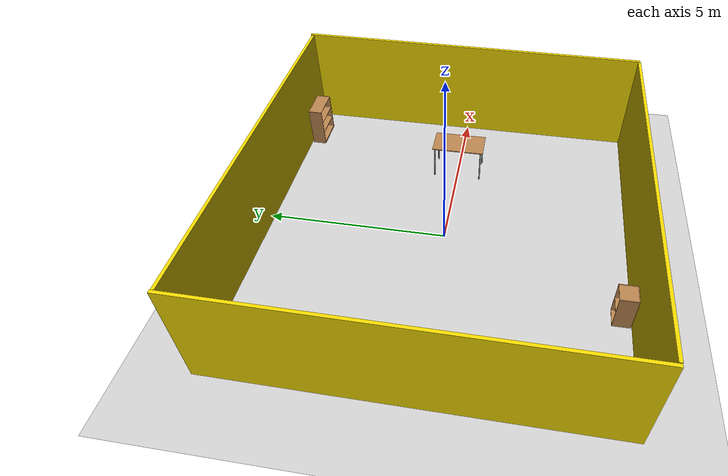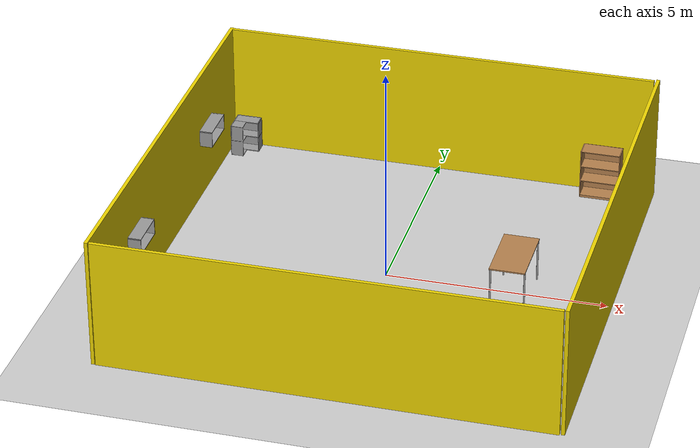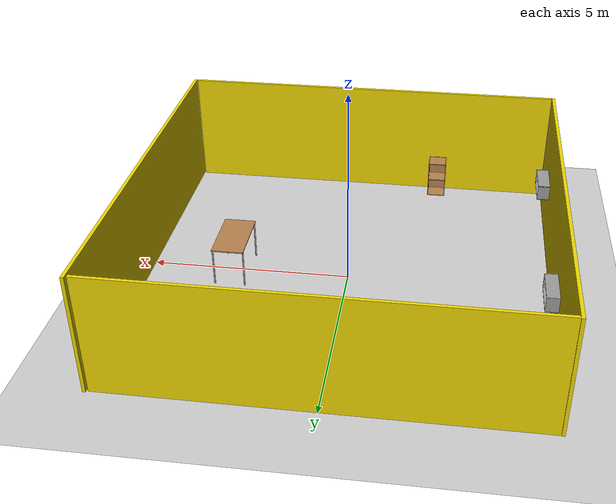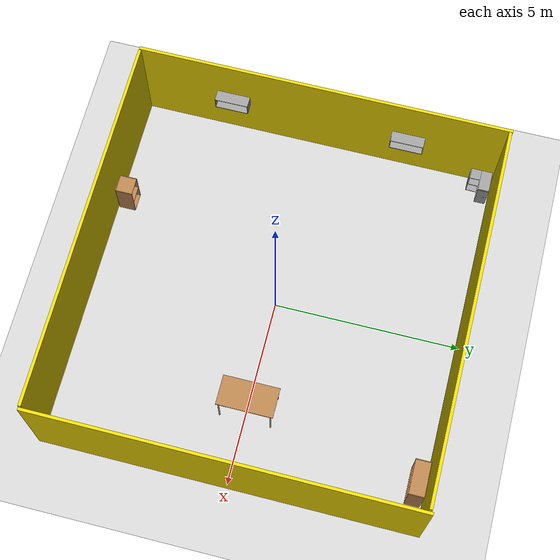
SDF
<sdf version="1.6">
 <world name="default">
  <light name="sun" type="directional">
   <pose>0 0 10 0 -0 0</pose>
   <diffuse>0.8 0.8 0.8 1</diffuse>
   <specular>0.2 0.2 0.2 1</specular>
   <attenuation>
    <range>1000</range>
    <constant>0.9</constant>
    <linear>0.01</linear>
    <quadratic>0.001</quadratic>
   </attenuation>
   <direction>-0.5 0.1 -0.9</direction>
  </light>
  <model name="ground_plane">
   <static>1</static>
   <link name="link">
    <collision name="collision">
     <geometry><plane><normal>0 0 1</normal><size>100 100</size></plane></geometry>
     <surface><friction><ode><mu>100</mu><mu2>50</mu2></ode></friction></surface>
    </collision>
    <visual name="visual">
     <cast_shadows>0</cast_shadows>
     <geometry><plane><normal>0 0 1</normal><size>100 100</size></plane></geometry>
     <material>
      <script><uri>file://media/materials/scripts/gazebo.material</uri><name>Gazebo/Grey</name></script>
     </material>
    </visual>
   </link>
  </model>
  <gravity>0 0 -9.8</gravity>
  <magnetic_field>6e-06 2.3e-05 -4.2e-05</magnetic_field>
  <atmosphere type="adiabatic"/>
  <physics name="default_physics" default="0" type="ode">
   <max_step_size>0.001</max_step_size>
   <real_time_factor>1</real_time_factor>
   <real_time_update_rate>1000</real_time_update_rate>
  </physics>
  <scene><ambient>0.4 0.4 0.4 1</ambient><background>0.7 0.7 0.7 1</background><shadows>1</shadows></scene>
  <audio><device>default</device></audio>
  <spherical_coordinates>
   <surface_model>EARTH_WGS84</surface_model>
   <latitude_deg>0</latitude_deg>
   <longitude_deg>0</longitude_deg>
   <elevation>0</elevation>
   <heading_deg>0</heading_deg>
  </spherical_coordinates>
  <model name="wall">
   <link name="link">
    <inertial>
     <mass>0.232178</mass>
     <inertia><ixx>0.174254</ixx><ixy>0</ixy><ixz>0</ixz><iyy>1.74134</iyy><iyz>0</iyz><izz>1.56732</izz></inertia>
    </inertial>
    <pose>-1.34497 0.547532 1 0 -0 0</pose>
    <visual name="visual">
     <geometry><box><size>10 0.078865 3</size></box></geometry>
     <material>
      <script><name>Gazebo/Grey</name><uri>file://media/materials/scripts/gazebo.material</uri></script>
      <shader type="vertex"><normal_map>__default__</normal_map></shader>
      <ambient>0.929 0.831 0 1</ambient>
      <diffuse>0.929 0.831 0 1</diffuse>
      <specular>0.01 0.01 0.01 1</specular>
      <emissive>0 0 0 1</emissive>
     </material>
    </visual>
    <collision name="collision">
     <geometry><box><size>10 0.078865 3</size></box></geometry>
     <surface>
      <friction>
       <ode><mu>1</mu><mu2>1</mu2><fdir1>0 0 0</fdir1><slip1>0</slip1><slip2>0</slip2></ode>
       <torsional>
        <coefficient>1</coefficient>
        <patch_radius>0</patch_radius>
        <surface_radius>0</surface_radius>
        <use_patch_radius>1</use_patch_radius>
        <ode><slip>0</slip></ode>
       </torsional>
      </friction>
      <bounce><restitution_coefficient>0</restitution_coefficient><threshold>1e+06</threshold></bounce>
      <contact>
       <collide_without_contact>0</collide_without_contact>
       <collide_without_contact_bitmask>1</collide_without_contact_bitmask>
       <collide_bitmask>1</collide_bitmask>
       <ode>
        <soft_cfm>0</soft_cfm>
        <soft_erp>0.2</soft_erp>
        <kp>1e+13</kp>
        <kd>1</kd>
        <max_vel>0.01</max_vel>
        <min_depth>0</min_depth>
       </ode>
       <bullet>
        <split_impulse>1</split_impulse>
        <split_impulse_penetration_threshold>-0.01</split_impulse_penetration_threshold>
        <soft_cfm>0</soft_cfm>
        <soft_erp>0.2</soft_erp>
        <kp>1e+13</kp>
        <kd>1</kd>
       </bullet>
      </contact>
     </surface>
    </collision>
   </link>
   <static>0</static>
   <pose>1.33777 4.39689 0.499993 0 -2e-06 -0.002473</pose>
  </model>
  <model name="wall_clone">
   <link name="link">
    <inertial>
     <mass>0.232178</mass>
     <inertia><ixx>0.174254</ixx><ixy>0</ixy><ixz>0</ixz><iyy>1.74134</iyy><iyz>0</iyz><izz>1.56732</izz></inertia>
    </inertial>
    <pose>-1.34497 0.547532 1 0 -0 0</pose>
    <visual name="visual">
     <geometry><box><size>10 0.078865 3</size></box></geometry>
     <material>
      <script><name>Gazebo/Grey</name><uri>file://media/materials/scripts/gazebo.material</uri></script>
      <shader type="vertex"><normal_map>__default__</normal_map></shader>
      <ambient>0.929 0.831 0 1</ambient>
      <diffuse>0.929 0.831 0 1</diffuse>
      <specular>0.01 0.01 0.01 1</specular>
      <emissive>0 0 0 1</emissive>
     </material>
    </visual>
    <collision name="collision">
     <geometry><box><size>10 0.078865 3</size></box></geometry>
     <surface>
      <friction>
       <ode><mu>1</mu><mu2>1</mu2><fdir1>0 0 0</fdir1><slip1>0</slip1><slip2>0</slip2></ode>
       <torsional>
        <coefficient>1</coefficient>
        <patch_radius>0</patch_radius>
        <surface_radius>0</surface_radius>
        <use_patch_radius>1</use_patch_radius>
        <ode><slip>0</slip></ode>
       </torsional>
      </friction>
      <bounce><restitution_coefficient>0</restitution_coefficient><threshold>1e+06</threshold></bounce>
      <contact>
       <collide_without_contact>0</collide_without_contact>
       <collide_without_contact_bitmask>1</collide_without_contact_bitmask>
       <collide_bitmask>1</collide_bitmask>
       <ode>
        <soft_cfm>0</soft_cfm>
        <soft_erp>0.2</soft_erp>
        <kp>1e+13</kp>
        <kd>1</kd>
        <max_vel>0.01</max_vel>
        <min_depth>0</min_depth>
       </ode>
       <bullet>
        <split_impulse>1</split_impulse>
        <split_impulse_penetration_threshold>-0.01</split_impulse_penetration_threshold>
        <soft_cfm>0</soft_cfm>
        <soft_erp>0.2</soft_erp>
        <kp>1e+13</kp>
        <kd>1</kd>
       </bullet>
      </contact>
     </surface>
    </collision>
   </link>
   <static>0</static>
   <pose>1.32633 -5.51405 0.499988 0 2e-06 -0.001311</pose>
  </model>
  <model name="wall_clone_0">
   <link name="link">
    <inertial>
     <mass>0.232178</mass>
     <inertia><ixx>0.174254</ixx><ixy>0</ixy><ixz>0</ixz><iyy>1.74134</iyy><iyz>0</iyz><izz>1.56732</izz></inertia>
    </inertial>
    <pose>-1.34497 0.547532 1 0 -0 0</pose>
    <visual name="visual">
     <geometry><box><size>10 0.078865 3</size></box></geometry>
     <material>
      <script><name>Gazebo/Grey</name><uri>file://media/materials/scripts/gazebo.material</uri></script>
      <shader type="vertex"><normal_map>__default__</normal_map></shader>
      <ambient>0.929 0.831 0 1</ambient>
      <diffuse>0.929 0.831 0 1</diffuse>
      <specular>0.01 0.01 0.01 1</specular>
      <emissive>0 0 0 1</emissive>
     </material>
    </visual>
    <collision name="collision">
     <geometry><box><size>10 0.078865 3</size></box></geometry>
     <surface>
      <friction>
       <ode><mu>1</mu><mu2>1</mu2><fdir1>0 0 0</fdir1><slip1>0</slip1><slip2>0</slip2></ode>
       <torsional>
        <coefficient>1</coefficient>
        <patch_radius>0</patch_radius>
        <surface_radius>0</surface_radius>
        <use_patch_radius>1</use_patch_radius>
        <ode><slip>0</slip></ode>
       </torsional>
      </friction>
      <bounce><restitution_coefficient>0</restitution_coefficient><threshold>1e+06</threshold></bounce>
      <contact>
       <collide_without_contact>0</collide_without_contact>
       <collide_without_contact_bitmask>1</collide_without_contact_bitmask>
       <collide_bitmask>1</collide_bitmask>
       <ode>
        <soft_cfm>0</soft_cfm>
        <soft_erp>0.2</soft_erp>
        <kp>1e+13</kp>
        <kd>1</kd>
        <max_vel>0.01</max_vel>
        <min_depth>0</min_depth>
       </ode>
       <bullet>
        <split_impulse>1</split_impulse>
        <split_impulse_penetration_threshold>-0.01</split_impulse_penetration_threshold>
        <soft_cfm>0</soft_cfm>
        <soft_erp>0.2</soft_erp>
        <kp>1e+13</kp>
        <kd>1</kd>
       </bullet>
      </contact>
     </surface>
    </collision>
   </link>
   <static>0</static>
   <pose>-4.51089 1.35715 0.499988 0 2e-06 1.56802</pose>
  </model>
  <model name="wall_clone_1">
   <link name="link">
    <inertial>
     <mass>0.232178</mass>
     <inertia><ixx>0.174254</ixx><ixy>0</ixy><ixz>0</ixz><iyy>1.74134</iyy><iyz>0</iyz><izz>1.56732</izz></inertia>
    </inertial>
    <pose>-1.34497 0.547532 1 0 -0 0</pose>
    <visual name="visual">
     <geometry><box><size>10 0.078865 3</size></box></geometry>
     <material>
      <script><name>Gazebo/Grey</name><uri>file://media/materials/scripts/gazebo.material</uri></script>
      <shader type="vertex"><normal_map>__default__</normal_map></shader>
      <ambient>0.929 0.831 0 1</ambient>
      <diffuse>0.929 0.831 0 1</diffuse>
      <specular>0.01 0.01 0.01 1</specular>
      <emissive>0 0 0 1</emissive>
     </material>
    </visual>
    <collision name="collision">
     <geometry><box><size>10 0.078865 3</size></box></geometry>
     <surface>
      <friction>
       <ode><mu>1</mu><mu2>1</mu2><fdir1>0 0 0</fdir1><slip1>0</slip1><slip2>0</slip2></ode>
       <torsional>
        <coefficient>1</coefficient>
        <patch_radius>0</patch_radius>
        <surface_radius>0</surface_radius>
        <use_patch_radius>1</use_patch_radius>
        <ode><slip>0</slip></ode>
       </torsional>
      </friction>
      <bounce><restitution_coefficient>0</restitution_coefficient><threshold>1e+06</threshold></bounce>
      <contact>
       <collide_without_contact>0</collide_without_contact>
       <collide_without_contact_bitmask>1</collide_without_contact_bitmask>
       <collide_bitmask>1</collide_bitmask>
       <ode>
        <soft_cfm>0</soft_cfm>
        <soft_erp>0.2</soft_erp>
        <kp>1e+13</kp>
        <kd>1</kd>
        <max_vel>0.01</max_vel>
        <min_depth>0</min_depth>
       </ode>
       <bullet>
        <split_impulse>1</split_impulse>
        <split_impulse_penetration_threshold>-0.01</split_impulse_penetration_threshold>
        <soft_cfm>0</soft_cfm>
        <soft_erp>0.2</soft_erp>
        <kp>1e+13</kp>
        <kd>1</kd>
       </bullet>
      </contact>
     </surface>
    </collision>
   </link>
   <static>0</static>
   <pose>5.61341 1.35715 0.499988 0 2e-06 1.56802</pose>
  </model>
  <model name="bookshelf">
   <static>1</static>
   <link name="link">
    <inertial><mass>1</mass></inertial>
    <collision name="back">
     <pose>0 0.005 0.6 0 -0 0</pose>
     <geometry><box><size>0.9 0.01 1.2</size></box></geometry>
    </collision>
    <visual name="visual1">
     <pose>0 0.005 0.6 0 -0 0</pose>
     <geometry><box><size>0.9 0.01 1.2</size></box></geometry>
     <material>
      <script><uri>file://media/materials/scripts/gazebo.material</uri><name>Gazebo/Wood</name></script>
     </material>
    </visual>
    <collision name="left_side">
     <pose>0.45 -0.195 0.6 0 -0 0</pose>
     <geometry><box><size>0.02 0.4 1.2</size></box></geometry>
    </collision>
    <visual name="visual2">
     <pose>0.45 -0.195 0.6 0 -0 0</pose>
     <geometry><box><size>0.02 0.4 1.2</size></box></geometry>
     <material>
      <script><uri>file://media/materials/scripts/gazebo.material</uri><name>Gazebo/Wood</name></script>
     </material>
    </visual>
    <collision name="right_side">
     <pose>-0.45 -0.195 0.6 0 -0 0</pose>
     <geometry><box><size>0.02 0.4 1.2</size></box></geometry>
    </collision>
    <visual name="visual3">
     <pose>-0.45 -0.195 0.6 0 -0 0</pose>
     <geometry><box><size>0.02 0.4 1.2</size></box></geometry>
     <material>
      <script><uri>file://media/materials/scripts/gazebo.material</uri><name>Gazebo/Wood</name></script>
     </material>
    </visual>
    <collision name="bottom">
     <pose>0 -0.195 0.03 0 -0 0</pose>
     <geometry><box><size>0.88 0.4 0.06</size></box></geometry>
    </collision>
    <visual name="visual4">
     <pose>0 -0.195 0.03 0 -0 0</pose>
     <geometry><box><size>0.88 0.4 0.06</size></box></geometry>
     <material>
      <script><uri>file://media/materials/scripts/gazebo.material</uri><name>Gazebo/Wood</name></script>
     </material>
    </visual>
    <collision name="top">
     <pose>0 -0.195 1.19 0 -0 0</pose>
     <geometry><box><size>0.88 0.4 0.02</size></box></geometry>
    </collision>
    <visual name="visual5">
     <pose>0 -0.195 1.19 0 -0 0</pose>
     <geometry><box><size>0.88 0.4 0.02</size></box></geometry>
     <material>
      <script><uri>file://media/materials/scripts/gazebo.material</uri><name>Gazebo/Wood</name></script>
     </material>
    </visual>
    <collision name="low_shelf">
     <pose>0 -0.195 0.43 0 -0 0</pose>
     <geometry><box><size>0.88 0.4 0.02</size></box></geometry>
    </collision>
    <visual name="visual6">
     <pose>0 -0.195 0.43 0 -0 0</pose>
     <geometry><box><size>0.88 0.4 0.02</size></box></geometry>
     <material>
      <script><uri>file://media/materials/scripts/gazebo.material</uri><name>Gazebo/Wood</name></script>
     </material>
    </visual>
    <collision name="high_shelf">
     <pose>0 -0.195 0.8 0 -0 0</pose>
     <geometry><box><size>0.88 0.4 0.02</size></box></geometry>
    </collision>
    <visual name="visual7">
     <pose>0 -0.195 0.8 0 -0 0</pose>
     <geometry><box><size>0.88 0.4 0.02</size></box></geometry>
     <material>
      <script><uri>file://media/materials/scripts/gazebo.material</uri><name>Gazebo/Wood</name></script>
     </material>
    </visual>
   </link>
   <pose>3.91792 4.84906 0 0 -0 0</pose>
  </model>
  <model name="cabinet">
   <static>1</static>
   <link name="cabinet_bottom_plate">
    <inertial>
     <pose>0 0 -1 0 -0 0</pose>
     <inertia><ixx>2.05</ixx><ixy>0</ixy><ixz>0</ixz><iyy>2.05</iyy><iyz>0</iyz><izz>2.05</izz></inertia>
     <mass>25</mass>
    </inertial>
    <collision name="cabinet_bottom_plate_geom">
     <pose>0 0 0.01 0 -0 0</pose>
     <geometry><box><size>0.45 0.45 0.02</size></box></geometry>
    </collision>
    <visual name="cabinet_bottom_plate_geom_visual">
     <pose>0 0 0.01 0 -0 0</pose>
     <geometry><box><size>0.45 0.45 0.02</size></box></geometry>
     <material>
      <script><uri>file://media/materials/scripts/gazebo.material</uri><name>Gazebo/Wood</name></script>
     </material>
    </visual>
    <collision name="cabinet_bottom_plate_geom_cabinet_back_plate">
     <pose>0.235 0 0.51 0 -0 0</pose>
     <geometry><box><size>0.02 0.45 1.02</size></box></geometry>
    </collision>
    <visual name="cabinet_bottom_plate_geom_cabinet_back_plate_visual">
     <pose>0.235 0 0.51 0 -0 0</pose>
     <geometry><box><size>0.02 0.45 1.02</size></box></geometry>
     <material>
      <script><uri>file://media/materials/scripts/gazebo.material</uri><name>Gazebo/Wood</name></script>
     </material>
    </visual>
    <collision name="cabinet_bottom_plate_geom_cabinet_left_plate">
     <pose>0 0.235 0.51 0 -0 0</pose>
     <geometry><box><size>0.45 0.02 1.02</size></box></geometry>
    </collision>
    <visual name="cabinet_bottom_plate_geom_cabinet_left_plate_visual">
     <pose>0 0.235 0.51 0 -0 0</pose>
     <geometry><box><size>0.45 0.02 1.02</size></box></geometry>
     <material>
      <script><uri>file://media/materials/scripts/gazebo.material</uri><name>Gazebo/Wood</name></script>
     </material>
    </visual>
    <collision name="cabinet_bottom_plate_geom_cabinet_middle_plate">
     <pose>0 0 0.51 0 -0 0</pose>
     <geometry><box><size>0.45 0.45 0.02</size></box></geometry>
    </collision>
    <visual name="cabinet_bottom_plate_geom_cabinet_middle_plate_visual">
     <pose>0 0 0.51 0 -0 0</pose>
     <geometry><box><size>0.45 0.45 0.02</size></box></geometry>
     <material>
      <script><uri>file://media/materials/scripts/gazebo.material</uri><name>Gazebo/Wood</name></script>
     </material>
    </visual>
    <collision name="cabinet_bottom_plate_geom_cabinet_right_plate">
     <pose>0 -0.235 0.51 0 -0 0</pose>
     <geometry><box><size>0.45 0.02 1.02</size></box></geometry>
    </collision>
    <visual name="cabinet_bottom_plate_geom_cabinet_right_plate_visual">
     <pose>0 -0.235 0.51 0 -0 0</pose>
     <geometry><box><size>0.45 0.02 1.02</size></box></geometry>
     <material>
      <script><uri>file://media/materials/scripts/gazebo.material</uri><name>Gazebo/Wood</name></script>
     </material>
    </visual>
    <collision name="cabinet_bottom_plate_geom_cabinet_top_plate">
     <pose>0 0 1.01 0 -0 0</pose>
     <geometry><box><size>0.45 0.45 0.02</size></box></geometry>
    </collision>
    <visual name="cabinet_bottom_plate_geom_cabinet_top_plate_visual">
     <pose>0 0 1.01 0 -0 0</pose>
     <geometry><box><size>0.45 0.45 0.02</size></box></geometry>
     <material>
      <script><uri>file://media/materials/scripts/gazebo.material</uri><name>Gazebo/Wood</name></script>
     </material>
    </visual>
   </link>
   <pose>-2.01375 -4.66643 0 0 0 -1.57</pose>
  </model>
  <model name="table">
   <static>1</static>
   <link name="link">
    <collision name="surface">
     <pose>0 0 1 0 -0 0</pose>
     <geometry><box><size>1.5 0.8 0.03</size></box></geometry>
     <surface><friction><ode><mu>0.6</mu><mu2>0.6</mu2></ode></friction></surface>
    </collision>
    <visual name="visual1">
     <pose>0 0 1 0 -0 0</pose>
     <geometry><box><size>1.5 0.8 0.03</size></box></geometry>
     <material>
      <script><uri>file://media/materials/scripts/gazebo.material</uri><name>Gazebo/Wood</name></script>
     </material>
    </visual>
    <collision name="front_left_leg">
     <pose>0.68 0.38 0.5 0 -0 0</pose>
     <geometry><cylinder><radius>0.02</radius><length>1</length></cylinder></geometry>
    </collision>
    <visual name="front_left_leg">
     <pose>0.68 0.38 0.5 0 -0 0</pose>
     <geometry><cylinder><radius>0.02</radius><length>1</length></cylinder></geometry>
     <material>
      <script><uri>file://media/materials/scripts/gazebo.material</uri><name>Gazebo/Grey</name></script>
     </material>
    </visual>
    <collision name="front_right_leg">
     <pose>0.68 -0.38 0.5 0 -0 0</pose>
     <geometry><cylinder><radius>0.02</radius><length>1</length></cylinder></geometry>
    </collision>
    <visual name="front_right_leg">
     <pose>0.68 -0.38 0.5 0 -0 0</pose>
     <geometry><cylinder><radius>0.02</radius><length>1</length></cylinder></geometry>
     <material>
      <script><uri>file://media/materials/scripts/gazebo.material</uri><name>Gazebo/Grey</name></script>
     </material>
    </visual>
    <collision name="back_right_leg">
     <pose>-0.68 -0.38 0.5 0 -0 0</pose>
     <geometry><cylinder><radius>0.02</radius><length>1</length></cylinder></geometry>
    </collision>
    <visual name="back_right_leg">
     <pose>-0.68 -0.38 0.5 0 -0 0</pose>
     <geometry><cylinder><radius>0.02</radius><length>1</length></cylinder></geometry>
     <material>
      <script><uri>file://media/materials/scripts/gazebo.material</uri><name>Gazebo/Grey</name></script>
     </material>
    </visual>
    <collision name="back_left_leg">
     <pose>-0.68 0.38 0.5 0 -0 0</pose>
     <geometry><cylinder><radius>0.02</radius><length>1</length></cylinder></geometry>
    </collision>
    <visual name="back_left_leg">
     <pose>-0.68 0.38 0.5 0 -0 0</pose>
     <geometry><cylinder><radius>0.02</radius><length>1</length></cylinder></geometry>
     <material>
      <script><uri>file://media/materials/scripts/gazebo.material</uri><name>Gazebo/Grey</name></script>
     </material>
    </visual>
   </link>
   <pose>2.89498 0.013984 0 0 -0 1.57</pose>
  </model>
  <model name="Wall_Cabinet_36x15W">
   <link name="Wall_0">
    <pose>0 0 0.01 0 -0 0</pose>
    <inertial>
     <mass>1.9796</mass>
     <inertia><ixx>0.0145</ixx><iyy>0.1511</iyy><izz>0.1367</izz><ixy>0</ixy><ixz>0</ixz><iyz>0</iyz></inertia>
    </inertial>
    <collision name="Wall_0_Collision"><geometry><box><size>0.91 0.296 0.02</size></box></geometry></collision>
    <visual name="Wall_0_Visual">
     <geometry><box><size>0.91 0.296 0.02</size></box></geometry>
     <material>
      <script><uri>file://media/materials/scripts/gazebo.material</uri><name>Gazebo/Grey</name></script>
      <ambient>1 1 1 1</ambient>
     </material>
    </visual>
   </link>
   <joint name="0_2" type="fixed">
    <pose>-0.455 0 0 0 -0 0</pose>
    <parent>Wall_2</parent>
    <child>Wall_0</child>
    <axis>
     <xyz>0 0 1</xyz>
     <use_parent_model_frame>0</use_parent_model_frame>
     <limit><lower>-1e+16</lower><upper>1e+16</upper></limit>
    </axis>
   </joint>
   <joint name="0_4" type="fixed">
    <pose>0.455 0 0 0 -0 0</pose>
    <parent>Wall_4</parent>
    <child>Wall_0</child>
    <axis>
     <xyz>0 0 1</xyz>
     <use_parent_model_frame>0</use_parent_model_frame>
     <limit><lower>-1e+16</lower><upper>1e+16</upper></limit>
    </axis>
   </joint>
   <joint name="0_8" type="fixed">
    <pose>0 -0.148 0 0 -0 0</pose>
    <parent>Wall_8</parent>
    <child>Wall_0</child>
    <axis>
     <xyz>0 0 1</xyz>
     <use_parent_model_frame>0</use_parent_model_frame>
     <limit><lower>-1e+16</lower><upper>1e+16</upper></limit>
    </axis>
   </joint>
   <link name="Wall_2">
    <pose>-0.445 0 0.192 0 -0 0</pose>
    <inertial>
     <mass>0.8353</mass>
     <inertia><ixx>0.0061</ixx><iyy>0.0164</iyy><izz>0.0103</izz><ixy>0</ixy><ixz>0</ixz><iyz>0</iyz></inertia>
    </inertial>
    <collision name="Wall_2_Collision"><geometry><box><size>0.02 0.296 0.384</size></box></geometry></collision>
    <visual name="Wall_2_Visual">
     <geometry><box><size>0.02 0.296 0.384</size></box></geometry>
     <material>
      <script><uri>file://media/materials/scripts/gazebo.material</uri><name>Gazebo/Grey</name></script>
      <ambient>1 1 1 1</ambient>
     </material>
    </visual>
   </link>
   <link name="Wall_4">
    <pose>0.445 0 0.192 0 -0 0</pose>
    <inertial>
     <mass>0.8353</mass>
     <inertia><ixx>0.0061</ixx><iyy>0.0164</iyy><izz>0.0103</izz><ixy>0</ixy><ixz>0</ixz><iyz>0</iyz></inertia>
    </inertial>
    <collision name="Wall_4_Collision"><geometry><box><size>0.02 0.296 0.384</size></box></geometry></collision>
    <visual name="Wall_4_Visual">
     <geometry><box><size>0.02 0.296 0.384</size></box></geometry>
     <material>
      <script><uri>file://media/materials/scripts/gazebo.material</uri><name>Gazebo/Grey</name></script>
      <ambient>1 1 1 1</ambient>
     </material>
    </visual>
   </link>
   <link name="Wall_6">
    <pose>0 0 0.374 0 -0 0</pose>
    <inertial>
     <mass>1.9796</mass>
     <inertia><ixx>0.0145</ixx><iyy>0.1511</iyy><izz>0.1367</izz><ixy>0</ixy><ixz>0</ixz><iyz>0</iyz></inertia>
    </inertial>
    <collision name="Wall_6_Collision"><geometry><box><size>0.91 0.296 0.02</size></box></geometry></collision>
    <visual name="Wall_6_Visual">
     <geometry><box><size>0.91 0.296 0.02</size></box></geometry>
     <material>
      <script><uri>file://media/materials/scripts/gazebo.material</uri><name>Gazebo/Grey</name></script>
      <ambient>1 1 1 1</ambient>
     </material>
    </visual>
   </link>
   <joint name="6_2" type="fixed">
    <pose>-0.455 0 0 0 -0 0</pose>
    <parent>Wall_2</parent>
    <child>Wall_6</child>
    <axis>
     <xyz>0 0 1</xyz>
     <use_parent_model_frame>0</use_parent_model_frame>
     <limit><lower>-1e+16</lower><upper>1e+16</upper></limit>
    </axis>
   </joint>
   <joint name="6_4" type="fixed">
    <pose>0.455 0 0 0 -0 0</pose>
    <parent>Wall_4</parent>
    <child>Wall_6</child>
    <axis>
     <xyz>0 0 1</xyz>
     <use_parent_model_frame>0</use_parent_model_frame>
     <limit><lower>-1e+16</lower><upper>1e+16</upper></limit>
    </axis>
   </joint>
   <joint name="6_8" type="fixed">
    <pose>0 -0.148 0 0 -0 0</pose>
    <parent>Wall_8</parent>
    <child>Wall_6</child>
    <axis>
     <xyz>0 0 1</xyz>
     <use_parent_model_frame>0</use_parent_model_frame>
     <limit><lower>-1e+16</lower><upper>1e+16</upper></limit>
    </axis>
   </joint>
   <link name="Wall_8">
    <pose>0 -0.138 0.19 0 -0 0</pose>
    <inertial>
     <mass>2.5302</mass>
     <inertia><ixx>0.0305</ixx><iyy>0.1732</iyy><izz>0.2035</izz><ixy>0</ixy><ixz>0</ixz><iyz>0</iyz></inertia>
    </inertial>
    <collision name="Wall_8_Collision"><geometry><box><size>0.906 0.02 0.38</size></box></geometry></collision>
    <visual name="Wall_8_Visual">
     <geometry><box><size>0.906 0.02 0.38</size></box></geometry>
     <material>
      <script><uri>file://media/materials/scripts/gazebo.material</uri><name>Gazebo/Grey</name></script>
      <ambient>1 1 1 1</ambient>
     </material>
    </visual>
   </link>
   <joint name="8_2" type="fixed">
    <pose>-0.453 0 0 0 -0 0</pose>
    <parent>Wall_2</parent>
    <child>Wall_8</child>
    <axis>
     <xyz>0 1 0</xyz>
     <use_parent_model_frame>0</use_parent_model_frame>
     <limit><lower>-1e+16</lower><upper>1e+16</upper></limit>
    </axis>
   </joint>
   <joint name="8_4" type="fixed">
    <pose>0.453 0 0 0 -0 0</pose>
    <parent>Wall_4</parent>
    <child>Wall_8</child>
    <axis>
     <xyz>0 1 0</xyz>
     <use_parent_model_frame>0</use_parent_model_frame>
     <limit><lower>-1e+16</lower><upper>1e+16</upper></limit>
    </axis>
   </joint>
   <static>1</static>
   <pose>-4.75643 2.42383 1.5 0 0 -1.57</pose>
  </model>
  <model name="Wall_Cabinet_36x15W_clone">
   <link name="Wall_0">
    <pose>0 0 0.01 0 -0 0</pose>
    <inertial>
     <mass>1.9796</mass>
     <inertia><ixx>0.0145</ixx><iyy>0.1511</iyy><izz>0.1367</izz><ixy>0</ixy><ixz>0</ixz><iyz>0</iyz></inertia>
    </inertial>
    <collision name="Wall_0_Collision"><geometry><box><size>0.91 0.296 0.02</size></box></geometry></collision>
    <visual name="Wall_0_Visual">
     <geometry><box><size>0.91 0.296 0.02</size></box></geometry>
     <material>
      <script><uri>file://media/materials/scripts/gazebo.material</uri><name>Gazebo/Grey</name></script>
      <ambient>1 1 1 1</ambient>
     </material>
    </visual>
   </link>
   <joint name="0_2" type="fixed">
    <pose>-0.455 0 0 0 -0 0</pose>
    <parent>Wall_2</parent>
    <child>Wall_0</child>
    <axis>
     <xyz>0 0 1</xyz>
     <use_parent_model_frame>0</use_parent_model_frame>
     <limit><lower>-1e+16</lower><upper>1e+16</upper></limit>
    </axis>
   </joint>
   <joint name="0_4" type="fixed">
    <pose>0.455 0 0 0 -0 0</pose>
    <parent>Wall_4</parent>
    <child>Wall_0</child>
    <axis>
     <xyz>0 0 1</xyz>
     <use_parent_model_frame>0</use_parent_model_frame>
     <limit><lower>-1e+16</lower><upper>1e+16</upper></limit>
    </axis>
   </joint>
   <joint name="0_8" type="fixed">
    <pose>0 -0.148 0 0 -0 0</pose>
    <parent>Wall_8</parent>
    <child>Wall_0</child>
    <axis>
     <xyz>0 0 1</xyz>
     <use_parent_model_frame>0</use_parent_model_frame>
     <limit><lower>-1e+16</lower><upper>1e+16</upper></limit>
    </axis>
   </joint>
   <link name="Wall_2">
    <pose>-0.445 0 0.192 0 -0 0</pose>
    <inertial>
     <mass>0.8353</mass>
     <inertia><ixx>0.0061</ixx><iyy>0.0164</iyy><izz>0.0103</izz><ixy>0</ixy><ixz>0</ixz><iyz>0</iyz></inertia>
    </inertial>
    <collision name="Wall_2_Collision"><geometry><box><size>0.02 0.296 0.384</size></box></geometry></collision>
    <visual name="Wall_2_Visual">
     <geometry><box><size>0.02 0.296 0.384</size></box></geometry>
     <material>
      <script><uri>file://media/materials/scripts/gazebo.material</uri><name>Gazebo/Grey</name></script>
      <ambient>1 1 1 1</ambient>
     </material>
    </visual>
   </link>
   <link name="Wall_4">
    <pose>0.445 0 0.192 0 -0 0</pose>
    <inertial>
     <mass>0.8353</mass>
     <inertia><ixx>0.0061</ixx><iyy>0.0164</iyy><izz>0.0103</izz><ixy>0</ixy><ixz>0</ixz><iyz>0</iyz></inertia>
    </inertial>
    <collision name="Wall_4_Collision"><geometry><box><size>0.02 0.296 0.384</size></box></geometry></collision>
    <visual name="Wall_4_Visual">
     <geometry><box><size>0.02 0.296 0.384</size></box></geometry>
     <material>
      <script><uri>file://media/materials/scripts/gazebo.material</uri><name>Gazebo/Grey</name></script>
      <ambient>1 1 1 1</ambient>
     </material>
    </visual>
   </link>
   <link name="Wall_6">
    <pose>0 0 0.374 0 -0 0</pose>
    <inertial>
     <mass>1.9796</mass>
     <inertia><ixx>0.0145</ixx><iyy>0.1511</iyy><izz>0.1367</izz><ixy>0</ixy><ixz>0</ixz><iyz>0</iyz></inertia>
    </inertial>
    <collision name="Wall_6_Collision"><geometry><box><size>0.91 0.296 0.02</size></box></geometry></collision>
    <visual name="Wall_6_Visual">
     <geometry><box><size>0.91 0.296 0.02</size></box></geometry>
     <material>
      <script><uri>file://media/materials/scripts/gazebo.material</uri><name>Gazebo/Grey</name></script>
      <ambient>1 1 1 1</ambient>
     </material>
    </visual>
   </link>
   <joint name="6_2" type="fixed">
    <pose>-0.455 0 0 0 -0 0</pose>
    <parent>Wall_2</parent>
    <child>Wall_6</child>
    <axis>
     <xyz>0 0 1</xyz>
     <use_parent_model_frame>0</use_parent_model_frame>
     <limit><lower>-1e+16</lower><upper>1e+16</upper></limit>
    </axis>
   </joint>
   <joint name="6_4" type="fixed">
    <pose>0.455 0 0 0 -0 0</pose>
    <parent>Wall_4</parent>
    <child>Wall_6</child>
    <axis>
     <xyz>0 0 1</xyz>
     <use_parent_model_frame>0</use_parent_model_frame>
     <limit><lower>-1e+16</lower><upper>1e+16</upper></limit>
    </axis>
   </joint>
   <joint name="6_8" type="fixed">
    <pose>0 -0.148 0 0 -0 0</pose>
    <parent>Wall_8</parent>
    <child>Wall_6</child>
    <axis>
     <xyz>0 0 1</xyz>
     <use_parent_model_frame>0</use_parent_model_frame>
     <limit><lower>-1e+16</lower><upper>1e+16</upper></limit>
    </axis>
   </joint>
   <link name="Wall_8">
    <pose>0 -0.138 0.19 0 -0 0</pose>
    <inertial>
     <mass>2.5302</mass>
     <inertia><ixx>0.0305</ixx><iyy>0.1732</iyy><izz>0.2035</izz><ixy>0</ixy><ixz>0</ixz><iyz>0</iyz></inertia>
    </inertial>
    <collision name="Wall_8_Collision"><geometry><box><size>0.906 0.02 0.38</size></box></geometry></collision>
    <visual name="Wall_8_Visual">
     <geometry><box><size>0.906 0.02 0.38</size></box></geometry>
     <material>
      <script><uri>file://media/materials/scripts/gazebo.material</uri><name>Gazebo/Grey</name></script>
      <ambient>1 1 1 1</ambient>
     </material>
    </visual>
   </link>
   <joint name="8_2" type="fixed">
    <pose>-0.453 0 0 0 -0 0</pose>
    <parent>Wall_2</parent>
    <child>Wall_8</child>
    <axis>
     <xyz>0 1 0</xyz>
     <use_parent_model_frame>0</use_parent_model_frame>
     <limit><lower>-1e+16</lower><upper>1e+16</upper></limit>
    </axis>
   </joint>
   <joint name="8_4" type="fixed">
    <pose>0.453 0 0 0 -0 0</pose>
    <parent>Wall_4</parent>
    <child>Wall_8</child>
    <axis>
     <xyz>0 1 0</xyz>
     <use_parent_model_frame>0</use_parent_model_frame>
     <limit><lower>-1e+16</lower><upper>1e+16</upper></limit>
    </axis>
   </joint>
   <static>1</static>
   <pose>-4.80434 -2.41122 1.5 0 0 -1.57</pose>
  </model>
  <model name="Wall_Cabinet_Coin_24x30W">
   <link name="Wall_10">
    <pose>0.286 -0.148 0.384 0 -0 0</pose>
    <inertial>
     <mass>2.1259</mass>
     <inertia><ixx>0.0158</ixx><iyy>0.1202</iyy><izz>0.1046</izz><ixy>0</ixy><ixz>0</ixz><iyz>0</iyz></inertia>
    </inertial>
    <collision name="Wall_10_Collision"><geometry><box><size>0.02 0.296 0.768</size></box></geometry></collision>
    <visual name="Wall_10_Visual">
     <geometry><box><size>0.02 0.296 0.768</size></box></geometry>
     <material>
      <script><uri>file://media/materials/scripts/gazebo.material</uri><name>Gazebo/Grey</name></script>
      <ambient>1 1 1 1</ambient>
     </material>
    </visual>
   </link>
   <joint name="10_16" type="fixed">
    <pose>0 0 -0.374 0 -0 0</pose>
    <parent>Wall_16</parent>
    <child>Wall_10</child>
    <axis>
     <xyz>1 0 0</xyz>
     <use_parent_model_frame>0</use_parent_model_frame>
     <limit><lower>-1e+16</lower><upper>1e+16</upper></limit>
    </axis>
   </joint>
   <joint name="10_14" type="fixed">
    <parent>Wall_14</parent>
    <child>Wall_10</child>
    <axis>
     <xyz>1 0 0</xyz>
     <use_parent_model_frame>0</use_parent_model_frame>
     <limit><lower>-1e+16</lower><upper>1e+16</upper></limit>
    </axis>
   </joint>
   <joint name="10_12" type="fixed">
    <pose>0 0 0.374 0 -0 0</pose>
    <parent>Wall_12</parent>
    <child>Wall_10</child>
    <axis>
     <xyz>1 0 0</xyz>
     <use_parent_model_frame>0</use_parent_model_frame>
     <limit><lower>-1e+16</lower><upper>1e+16</upper></limit>
    </axis>
   </joint>
   <joint name="10_29" type="fixed">
    <pose>0 -0.148 0 0 -0 0</pose>
    <parent>Wall_29</parent>
    <child>Wall_10</child>
    <axis>
     <xyz>1 0 0</xyz>
     <use_parent_model_frame>0</use_parent_model_frame>
     <limit><lower>-1e+16</lower><upper>1e+16</upper></limit>
    </axis>
   </joint>
   <link name="Wall_12">
    <pose>0.148 -0.148 0.758 0 -0 0</pose>
    <inertial>
     <mass>0.8802</mass>
     <inertia><ixx>0.0065</ixx><iyy>0.0139</iyy><izz>0.0074</izz><ixy>0</ixy><ixz>0</ixz><iyz>0</iyz></inertia>
    </inertial>
    <collision name="Wall_12_Collision"><geometry><box><size>0.296 0.296 0.02</size></box></geometry></collision>
    <visual name="Wall_12_Visual">
     <geometry><box><size>0.296 0.296 0.02</size></box></geometry>
     <material>
      <script><uri>file://media/materials/scripts/gazebo.material</uri><name>Gazebo/Grey</name></script>
      <ambient>1 1 1 1</ambient>
     </material>
    </visual>
   </link>
   <joint name="12_29" type="fixed">
    <pose>0 -0.148 0 0 -0 0</pose>
    <parent>Wall_29</parent>
    <child>Wall_12</child>
    <axis>
     <xyz>0 0 1</xyz>
     <use_parent_model_frame>0</use_parent_model_frame>
     <limit><lower>-1e+16</lower><upper>1e+16</upper></limit>
    </axis>
   </joint>
   <link name="Wall_14">
    <pose>0.148 -0.148 0.384 0 -0 0</pose>
    <inertial>
     <mass>0.8802</mass>
     <inertia><ixx>0.0065</ixx><iyy>0.0139</iyy><izz>0.0074</izz><ixy>0</ixy><ixz>0</ixz><iyz>0</iyz></inertia>
    </inertial>
    <collision name="Wall_14_Collision"><geometry><box><size>0.296 0.296 0.02</size></box></geometry></collision>
    <visual name="Wall_14_Visual">
     <geometry><box><size>0.296 0.296 0.02</size></box></geometry>
     <material>
      <script><uri>file://media/materials/scripts/gazebo.material</uri><name>Gazebo/Grey</name></script>
      <ambient>1 1 1 1</ambient>
     </material>
    </visual>
   </link>
   <joint name="14_29" type="fixed">
    <pose>0 -0.148 0 0 -0 0</pose>
    <parent>Wall_29</parent>
    <child>Wall_14</child>
    <axis>
     <xyz>0 1 0</xyz>
     <use_parent_model_frame>0</use_parent_model_frame>
     <limit><lower>-1e+16</lower><upper>1e+16</upper></limit>
    </axis>
   </joint>
   <link name="Wall_16">
    <pose>0.148 -0.148 0.01 0 -0 0</pose>
    <inertial>
     <mass>0.8802</mass>
     <inertia><ixx>0.0065</ixx><iyy>0.0139</iyy><izz>0.0074</izz><ixy>0</ixy><ixz>0</ixz><iyz>0</iyz></inertia>
    </inertial>
    <collision name="Wall_16_Collision"><geometry><box><size>0.296 0.296 0.02</size></box></geometry></collision>
    <visual name="Wall_16_Visual">
     <geometry><box><size>0.296 0.296 0.02</size></box></geometry>
     <material>
      <script><uri>file://media/materials/scripts/gazebo.material</uri><name>Gazebo/Grey</name></script>
      <ambient>1 1 1 1</ambient>
     </material>
    </visual>
   </link>
   <joint name="16_29" type="fixed">
    <pose>0 -0.148 0 0 -0 0</pose>
    <parent>Wall_29</parent>
    <child>Wall_16</child>
    <axis>
     <xyz>0 1 0</xyz>
     <use_parent_model_frame>0</use_parent_model_frame>
     <limit><lower>-1e+16</lower><upper>1e+16</upper></limit>
    </axis>
   </joint>
   <link name="Wall_18">
    <pose>-0.148 0 0.01 0 -0 0</pose>
    <inertial>
     <mass>1.6525</mass>
     <inertia><ixx>0.0491</ixx><iyy>0.0613</iyy><izz>0.0123</izz><ixy>0</ixy><ixz>0</ixz><iyz>0</iyz></inertia>
    </inertial>
    <collision name="Wall_18_Collision"><geometry><box><size>0.296 0.592 0.02</size></box></geometry></collision>
    <visual name="Wall_18_Visual">
     <geometry><box><size>0.296 0.592 0.02</size></box></geometry>
     <material>
      <script><uri>file://media/materials/scripts/gazebo.material</uri><name>Gazebo/Grey</name></script>
      <ambient>1 1 1 1</ambient>
     </material>
    </visual>
   </link>
   <joint name="18_16" type="fixed">
    <pose>0.148 -0.148 0 0 -0 0</pose>
    <parent>Wall_16</parent>
    <child>Wall_18</child>
    <axis>
     <xyz>1 0 0</xyz>
     <use_parent_model_frame>0</use_parent_model_frame>
     <limit><lower>-1e+16</lower><upper>1e+16</upper></limit>
    </axis>
   </joint>
   <joint name="18_29" type="fixed">
    <pose>0 -0.296 0 0 -0 0</pose>
    <parent>Wall_29</parent>
    <child>Wall_18</child>
    <axis>
     <xyz>0 1 0</xyz>
     <use_parent_model_frame>0</use_parent_model_frame>
     <limit><lower>-1e+16</lower><upper>1e+16</upper></limit>
    </axis>
   </joint>
   <joint name="18_27" type="fixed">
    <pose>-0.148 0 0 0 -0 0</pose>
    <parent>Wall_27</parent>
    <child>Wall_18</child>
    <axis>
     <xyz>1 0 0</xyz>
     <use_parent_model_frame>0</use_parent_model_frame>
     <limit><lower>-1e+16</lower><upper>1e+16</upper></limit>
    </axis>
   </joint>
   <joint name="18_30" type="fixed">
    <pose>0 0.296 0 0 -0 0</pose>
    <parent>Wall_30</parent>
    <child>Wall_18</child>
    <axis>
     <xyz>0 1 0</xyz>
     <use_parent_model_frame>0</use_parent_model_frame>
     <limit><lower>-1e+16</lower><upper>1e+16</upper></limit>
    </axis>
   </joint>
   <link name="Wall_20">
    <pose>-0.148 0 0.384 0 -0 0</pose>
    <inertial>
     <mass>1.6525</mass>
     <inertia><ixx>0.0491</ixx><iyy>0.0613</iyy><izz>0.0123</izz><ixy>0</ixy><ixz>0</ixz><iyz>0</iyz></inertia>
    </inertial>
    <collision name="Wall_20_Collision"><geometry><box><size>0.296 0.592 0.02</size></box></geometry></collision>
    <visual name="Wall_20_Visual">
     <geometry><box><size>0.296 0.592 0.02</size></box></geometry>
     <material>
      <script><uri>file://media/materials/scripts/gazebo.material</uri><name>Gazebo/Grey</name></script>
      <ambient>1 1 1 1</ambient>
     </material>
    </visual>
   </link>
   <joint name="20_14" type="fixed">
    <pose>0.148 -0.148 0 0 -0 0</pose>
    <parent>Wall_14</parent>
    <child>Wall_20</child>
    <axis>
     <xyz>1 0 0</xyz>
     <use_parent_model_frame>0</use_parent_model_frame>
     <limit><lower>-1e+16</lower><upper>1e+16</upper></limit>
    </axis>
   </joint>
   <joint name="20_29" type="fixed">
    <pose>0 -0.296 0 0 -0 0</pose>
    <parent>Wall_29</parent>
    <child>Wall_20</child>
    <axis>
     <xyz>0 1 0</xyz>
     <use_parent_model_frame>0</use_parent_model_frame>
     <limit><lower>-1e+16</lower><upper>1e+16</upper></limit>
    </axis>
   </joint>
   <joint name="20_27" type="fixed">
    <pose>-0.148 0 0 0 -0 0</pose>
    <parent>Wall_27</parent>
    <child>Wall_20</child>
    <axis>
     <xyz>1 0 0</xyz>
     <use_parent_model_frame>0</use_parent_model_frame>
     <limit><lower>-1e+16</lower><upper>1e+16</upper></limit>
    </axis>
   </joint>
   <joint name="20_30" type="fixed">
    <pose>0 0.296 0 0 -0 0</pose>
    <parent>Wall_30</parent>
    <child>Wall_20</child>
    <axis>
     <xyz>0 1 0</xyz>
     <use_parent_model_frame>0</use_parent_model_frame>
     <limit><lower>-1e+16</lower><upper>1e+16</upper></limit>
    </axis>
   </joint>
   <link name="Wall_22">
    <pose>-0.148 0 0.758 0 -0 0</pose>
    <inertial>
     <mass>1.6525</mass>
     <inertia><ixx>0.0491</ixx><iyy>0.0613</iyy><izz>0.0123</izz><ixy>0</ixy><ixz>0</ixz><iyz>0</iyz></inertia>
    </inertial>
    <collision name="Wall_22_Collision"><geometry><box><size>0.296 0.592 0.02</size></box></geometry></collision>
    <visual name="Wall_22_Visual">
     <geometry><box><size>0.296 0.592 0.02</size></box></geometry>
     <material>
      <script><uri>file://media/materials/scripts/gazebo.material</uri><name>Gazebo/Grey</name></script>
      <ambient>1 1 1 1</ambient>
     </material>
    </visual>
   </link>
   <joint name="22_12" type="fixed">
    <pose>0.148 -0.148 0 0 -0 0</pose>
    <parent>Wall_12</parent>
    <child>Wall_22</child>
    <axis>
     <xyz>1 0 0</xyz>
     <use_parent_model_frame>0</use_parent_model_frame>
     <limit><lower>-1e+16</lower><upper>1e+16</upper></limit>
    </axis>
   </joint>
   <joint name="22_29" type="fixed">
    <pose>0 -0.296 0 0 -0 0</pose>
    <parent>Wall_29</parent>
    <child>Wall_22</child>
    <axis>
     <xyz>0 1 0</xyz>
     <use_parent_model_frame>0</use_parent_model_frame>
     <limit><lower>-1e+16</lower><upper>1e+16</upper></limit>
    </axis>
   </joint>
   <joint name="22_27" type="fixed">
    <pose>-0.148 0 0 0 -0 0</pose>
    <parent>Wall_27</parent>
    <child>Wall_22</child>
    <axis>
     <xyz>1 0 0</xyz>
     <use_parent_model_frame>0</use_parent_model_frame>
     <limit><lower>-1e+16</lower><upper>1e+16</upper></limit>
    </axis>
   </joint>
   <joint name="22_30" type="fixed">
    <pose>0 0.296 0 0 -0 0</pose>
    <parent>Wall_30</parent>
    <child>Wall_22</child>
    <axis>
     <xyz>0 1 0</xyz>
     <use_parent_model_frame>0</use_parent_model_frame>
     <limit><lower>-1e+16</lower><upper>1e+16</upper></limit>
    </axis>
   </joint>
   <link name="Wall_27">
    <pose>-0.286 0 0.384 0 -0 0</pose>
    <inertial>
     <mass>4.2589</mass>
     <inertia><ixx>0.1266</ixx><iyy>0.3358</iyy><izz>0.2095</izz><ixy>0</ixy><ixz>0</ixz><iyz>0</iyz></inertia>
    </inertial>
    <collision name="Wall_27_Collision"><geometry><box><size>0.02 0.592 0.768</size></box></geometry></collision>
    <visual name="Wall_27_Visual">
     <geometry><box><size>0.02 0.592 0.768</size></box></geometry>
     <material>
      <script><uri>file://media/materials/scripts/gazebo.material</uri><name>Gazebo/Grey</name></script>
      <ambient>1 1 1 1</ambient>
     </material>
    </visual>
   </link>
   <joint name="27_30" type="fixed">
    <pose>0 0.296 0 0 -0 0</pose>
    <parent>Wall_30</parent>
    <child>Wall_27</child>
    <axis>
     <xyz>0 1 0</xyz>
     <use_parent_model_frame>0</use_parent_model_frame>
     <limit><lower>-1e+16</lower><upper>1e+16</upper></limit>
    </axis>
   </joint>
   <link name="Wall_29">
    <pose>0 -0.286 0.384 0 -0 0</pose>
    <inertial>
     <mass>4.3176</mass>
     <inertia><ixx>0.134</ixx><iyy>0.2091</iyy><izz>0.3428</izz><ixy>0</ixy><ixz>0</ixz><iyz>0</iyz></inertia>
    </inertial>
    <collision name="Wall_29_Collision"><geometry><box><size>0.592 0.02 0.768</size></box></geometry></collision>
    <visual name="Wall_29_Visual">
     <geometry><box><size>0.592 0.02 0.768</size></box></geometry>
     <material>
      <script><uri>file://media/materials/scripts/gazebo.material</uri><name>Gazebo/Grey</name></script>
      <ambient>1 1 1 1</ambient>
     </material>
    </visual>
   </link>
   <link name="Wall_30">
    <pose>-0.148 0.286 0.384 0 -0 0</pose>
    <inertial>
     <mass>2.1093</mass>
     <inertia><ixx>0.1021</ixx><iyy>0.0157</iyy><izz>0.1177</izz><ixy>0</ixy><ixz>0</ixz><iyz>0</iyz></inertia>
    </inertial>
    <collision name="Wall_30_Collision"><geometry><box><size>0.296 0.02 0.768</size></box></geometry></collision>
    <visual name="Wall_30_Visual">
     <geometry><box><size>0.296 0.02 0.768</size></box></geometry>
     <material>
      <script><uri>file://media/materials/scripts/gazebo.material</uri><name>Gazebo/Grey</name></script>
      <ambient>1 1 1 1</ambient>
     </material>
    </visual>
   </link>
   <static>1</static>
   <pose>-4.62516 4.5762 0 0 0 -1.57</pose>
  </model>
 </world>
</sdf>
